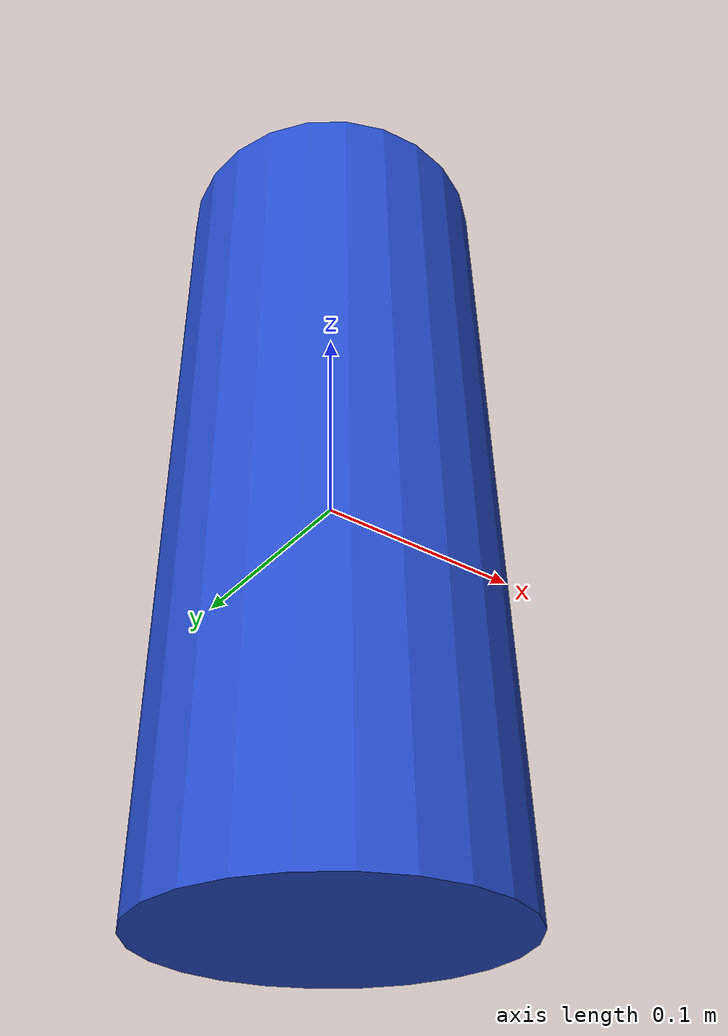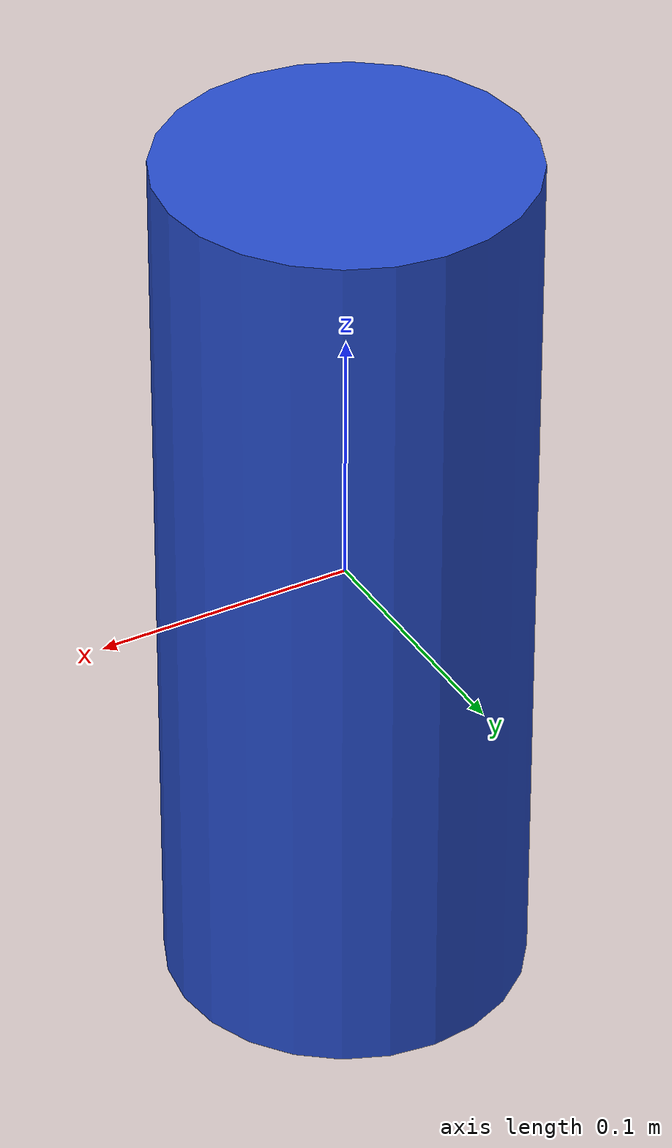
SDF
<?xml version='1.0'?>
<sdf version='1.5'>
  <model name='goal'>
    <link name='link'>
      <pose frame=''>0 0 0 0 -0 0</pose>
      <inertial>
        <mass>1</mass>
        <inertia>
          <ixx>0.145833</ixx>
          <ixy>0</ixy>
          <ixz>0</ixz>
          <iyy>0.145833</iyy>
          <iyz>0</iyz>
          <izz>0.125</izz>
        </inertia>
        <pose frame=''>0 0 0 0 -0 0</pose>
      </inertial>
      <self_collide>0</self_collide>
      <kinematic>0</kinematic>
      <gravity>0</gravity>
      <visual name='visual'>
        <geometry>
          <cylinder>
            <radius>0.07</radius>
            <length>0.35</length>
          </cylinder>
        </geometry>
        <material>
          <script>
            <name>Gazebo/blue</name>
            <uri>file://media/materials/scripts/gazebo.material</uri>
          </script>
          <ambient>0.3 0.3 0.3 1</ambient>
          <diffuse>0.7 0.7 0.7 1</diffuse>
          <specular>0.01 0.01 0.01 1</specular>
          <emissive>0.6 0 0.6 1</emissive>
          <shader type='vertex'>
            <normal_map>__default__</normal_map>
          </shader>
        </material>
        <pose frame=''>0 0 0 0 -0 0</pose>
        <cast_shadows>1</cast_shadows>
        <transparency>0</transparency>
      </visual>
    </link>
    <static>0</static>
    <allow_auto_disable>0</allow_auto_disable>
  </model>
</sdf>
